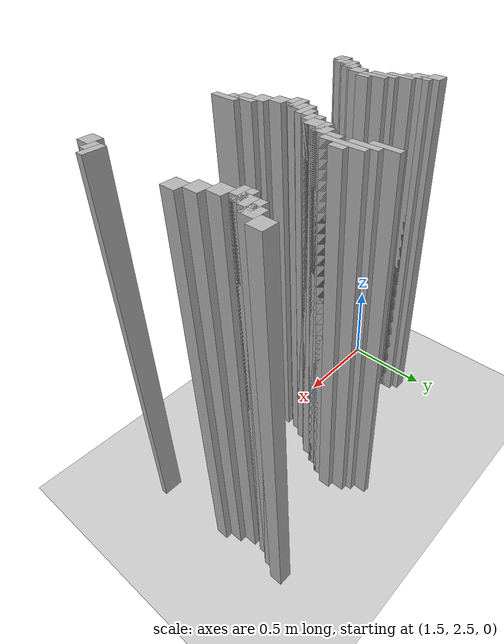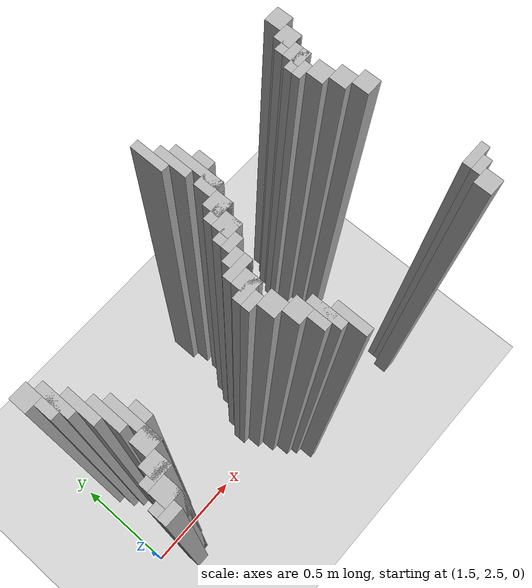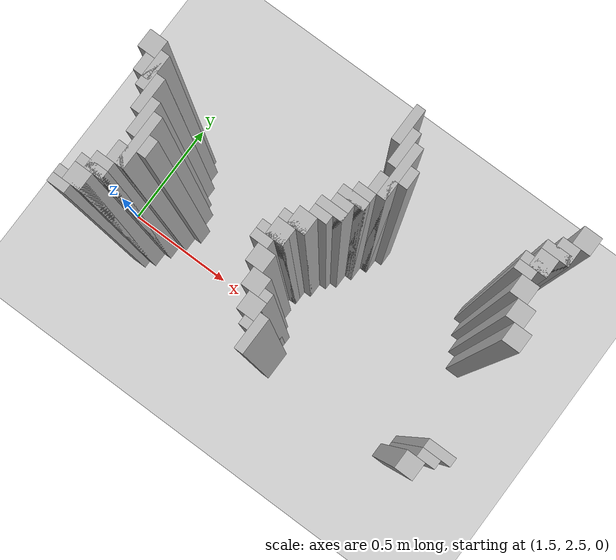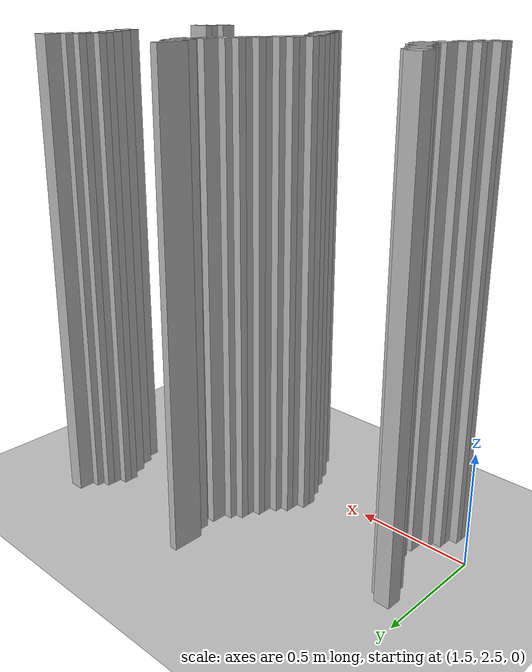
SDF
<sdf version="1.6">
 <world name="slam_world">
  <model name="ground_plane">
   <static>true</static>
   <link name="link">
    <collision name="collision">
     <geometry><plane><normal>0 0 1</normal><size>100 100</size></plane></geometry>
    </collision>
    <visual name="visual">
     <geometry><plane><normal>0 0 1</normal><size>100 100</size></plane></geometry>
     <material>
      <ambient>0.8 0.8 0.8 1</ambient>
      <diffuse>0.8 0.8 0.8 1</diffuse>
      <specular>0.8 0.8 0.8 1</specular>
     </material>
    </visual>
   </link>
  </model>
  <model name="wall_4666">
   <static>true</static>
   <pose>2.4187935034802783 3.167053364269141 1.0 0 0 0</pose>
   <link name="link">
    <collision name="collision">
     <geometry><box><size>0.03480278422273782 0.13921113689095127 2.0</size></box></geometry>
    </collision>
    <visual name="visual">
     <geometry><box><size>0.03480278422273782 0.13921113689095127 2.0</size></box></geometry>
     <material><ambient>0.5 0.5 0.5 1</ambient><diffuse>0.7 0.7 0.7 1</diffuse></material>
    </visual>
   </link>
  </model>
  <model name="wall_4667">
   <static>true</static>
   <pose>3.097447795823666 3.201856148491879 1.0 0 0 0</pose>
   <link name="link">
    <collision name="collision">
     <geometry><box><size>0.06960556844547564 0.06960556844547564 2.0</size></box></geometry>
    </collision>
    <visual name="visual">
     <geometry><box><size>0.06960556844547564 0.06960556844547564 2.0</size></box></geometry>
     <material><ambient>0.5 0.5 0.5 1</ambient><diffuse>0.7 0.7 0.7 1</diffuse></material>
    </visual>
   </link>
  </model>
  <model name="wall_4679">
   <static>true</static>
   <pose>2.453596287703016 3.097447795823666 1.0 0 0 0</pose>
   <link name="link">
    <collision name="collision">
     <geometry><box><size>0.03480278422273782 0.13921113689095127 2.0</size></box></geometry>
    </collision>
    <visual name="visual">
     <geometry><box><size>0.03480278422273782 0.13921113689095127 2.0</size></box></geometry>
     <material><ambient>0.5 0.5 0.5 1</ambient><diffuse>0.7 0.7 0.7 1</diffuse></material>
    </visual>
   </link>
  </model>
  <model name="wall_4680">
   <static>true</static>
   <pose>3.062645011600928 3.1322505800464038 1.0 0 0 0</pose>
   <link name="link">
    <collision name="collision">
     <geometry><box><size>0.06960556844547564 0.06960556844547564 2.0</size></box></geometry>
    </collision>
    <visual name="visual">
     <geometry><box><size>0.06960556844547564 0.06960556844547564 2.0</size></box></geometry>
     <material><ambient>0.5 0.5 0.5 1</ambient><diffuse>0.7 0.7 0.7 1</diffuse></material>
    </visual>
   </link>
  </model>
  <model name="wall_4692">
   <static>true</static>
   <pose>2.488399071925754 3.02784222737819 1.0 0 0 0</pose>
   <link name="link">
    <collision name="collision">
     <geometry><box><size>0.03480278422273782 0.2088167053364269 2.0</size></box></geometry>
    </collision>
    <visual name="visual">
     <geometry><box><size>0.03480278422273782 0.2088167053364269 2.0</size></box></geometry>
     <material><ambient>0.5 0.5 0.5 1</ambient><diffuse>0.7 0.7 0.7 1</diffuse></material>
    </visual>
   </link>
  </model>
  <model name="wall_4693">
   <static>true</static>
   <pose>3.045243619489559 3.1148491879350346 1.0 0 0 0</pose>
   <link name="link">
    <collision name="collision">
     <geometry><box><size>0.10440835266821345 0.03480278422273782 2.0</size></box></geometry>
    </collision>
    <visual name="visual">
     <geometry><box><size>0.10440835266821345 0.03480278422273782 2.0</size></box></geometry>
     <material><ambient>0.5 0.5 0.5 1</ambient><diffuse>0.7 0.7 0.7 1</diffuse></material>
    </visual>
   </link>
  </model>
  <model name="wall_4704">
   <static>true</static>
   <pose>3.02784222737819 3.062645011600928 1.0 0 0 0</pose>
   <link name="link">
    <collision name="collision">
     <geometry><box><size>0.06960556844547564 0.06960556844547564 2.0</size></box></geometry>
    </collision>
    <visual name="visual">
     <geometry><box><size>0.06960556844547564 0.06960556844547564 2.0</size></box></geometry>
     <material><ambient>0.5 0.5 0.5 1</ambient><diffuse>0.7 0.7 0.7 1</diffuse></material>
    </visual>
   </link>
  </model>
  <model name="wall_4712">
   <static>true</static>
   <pose>2.523201856148492 3.02784222737819 1.0 0 0 0</pose>
   <link name="link">
    <collision name="collision">
     <geometry><box><size>0.03480278422273782 0.06960556844547564 2.0</size></box></geometry>
    </collision>
    <visual name="visual">
     <geometry><box><size>0.03480278422273782 0.06960556844547564 2.0</size></box></geometry>
     <material><ambient>0.5 0.5 0.5 1</ambient><diffuse>0.7 0.7 0.7 1</diffuse></material>
    </visual>
   </link>
  </model>
  <model name="wall_4713">
   <static>true</static>
   <pose>3.010440835266821 3.045243619489559 1.0 0 0 0</pose>
   <link name="link">
    <collision name="collision">
     <geometry><box><size>0.10440835266821345 0.03480278422273782 2.0</size></box></geometry>
    </collision>
    <visual name="visual">
     <geometry><box><size>0.10440835266821345 0.03480278422273782 2.0</size></box></geometry>
     <material><ambient>0.5 0.5 0.5 1</ambient><diffuse>0.7 0.7 0.7 1</diffuse></material>
    </visual>
   </link>
  </model>
  <model name="wall_4726">
   <static>true</static>
   <pose>2.9930394431554523 3.010440835266821 1.0 0 0 0</pose>
   <link name="link">
    <collision name="collision">
     <geometry><box><size>0.06960556844547564 0.03480278422273782 2.0</size></box></geometry>
    </collision>
    <visual name="visual">
     <geometry><box><size>0.06960556844547564 0.03480278422273782 2.0</size></box></geometry>
     <material><ambient>0.5 0.5 0.5 1</ambient><diffuse>0.7 0.7 0.7 1</diffuse></material>
    </visual>
   </link>
  </model>
  <model name="wall_4734">
   <static>true</static>
   <pose>2.470997679814385 2.9582366589327145 1.0 0 0 0</pose>
   <link name="link">
    <collision name="collision">
     <geometry><box><size>0.06960556844547564 0.06960556844547564 2.0</size></box></geometry>
    </collision>
    <visual name="visual">
     <geometry><box><size>0.06960556844547564 0.06960556844547564 2.0</size></box></geometry>
     <material><ambient>0.5 0.5 0.5 1</ambient><diffuse>0.7 0.7 0.7 1</diffuse></material>
    </visual>
   </link>
  </model>
  <model name="wall_4735">
   <static>true</static>
   <pose>3.02784222737819 2.9582366589327145 1.0 0 0 0</pose>
   <link name="link">
    <collision name="collision">
     <geometry><box><size>0.06960556844547564 0.06960556844547564 2.0</size></box></geometry>
    </collision>
    <visual name="visual">
     <geometry><box><size>0.06960556844547564 0.06960556844547564 2.0</size></box></geometry>
     <material><ambient>0.5 0.5 0.5 1</ambient><diffuse>0.7 0.7 0.7 1</diffuse></material>
    </visual>
   </link>
  </model>
  <model name="wall_4752">
   <static>true</static>
   <pose>1.6009280742459395 2.8886310904872388 1.0 0 0 0</pose>
   <link name="link">
    <collision name="collision">
     <geometry><box><size>0.06960556844547564 0.06960556844547564 2.0</size></box></geometry>
    </collision>
    <visual name="visual">
     <geometry><box><size>0.06960556844547564 0.06960556844547564 2.0</size></box></geometry>
     <material><ambient>0.5 0.5 0.5 1</ambient><diffuse>0.7 0.7 0.7 1</diffuse></material>
    </visual>
   </link>
  </model>
  <model name="wall_4753">
   <static>true</static>
   <pose>2.436194895591647 2.8886310904872388 1.0 0 0 0</pose>
   <link name="link">
    <collision name="collision">
     <geometry><box><size>0.06960556844547564 0.06960556844547564 2.0</size></box></geometry>
    </collision>
    <visual name="visual">
     <geometry><box><size>0.06960556844547564 0.06960556844547564 2.0</size></box></geometry>
     <material><ambient>0.5 0.5 0.5 1</ambient><diffuse>0.7 0.7 0.7 1</diffuse></material>
    </visual>
   </link>
  </model>
  <model name="wall_4754">
   <static>true</static>
   <pose>3.062645011600928 2.8886310904872388 1.0 0 0 0</pose>
   <link name="link">
    <collision name="collision">
     <geometry><box><size>0.06960556844547564 0.06960556844547564 2.0</size></box></geometry>
    </collision>
    <visual name="visual">
     <geometry><box><size>0.06960556844547564 0.06960556844547564 2.0</size></box></geometry>
     <material><ambient>0.5 0.5 0.5 1</ambient><diffuse>0.7 0.7 0.7 1</diffuse></material>
    </visual>
   </link>
  </model>
  <model name="wall_4768">
   <static>true</static>
   <pose>1.6531322505800463 2.819025522041763 1.0 0 0 0</pose>
   <link name="link">
    <collision name="collision">
     <geometry><box><size>0.03480278422273782 0.13921113689095127 2.0</size></box></geometry>
    </collision>
    <visual name="visual">
     <geometry><box><size>0.03480278422273782 0.13921113689095127 2.0</size></box></geometry>
     <material><ambient>0.5 0.5 0.5 1</ambient><diffuse>0.7 0.7 0.7 1</diffuse></material>
    </visual>
   </link>
  </model>
  <model name="wall_4769">
   <static>true</static>
   <pose>2.4187935034802783 2.87122969837587 1.0 0 0 0</pose>
   <link name="link">
    <collision name="collision">
     <geometry><box><size>0.10440835266821345 0.03480278422273782 2.0</size></box></geometry>
    </collision>
    <visual name="visual">
     <geometry><box><size>0.10440835266821345 0.03480278422273782 2.0</size></box></geometry>
     <material><ambient>0.5 0.5 0.5 1</ambient><diffuse>0.7 0.7 0.7 1</diffuse></material>
    </visual>
   </link>
  </model>
  <model name="wall_4784">
   <static>true</static>
   <pose>1.6357308584686774 2.819025522041763 1.0 0 0 0</pose>
   <link name="link">
    <collision name="collision">
     <geometry><box><size>0.06960556844547564 0.06960556844547564 2.0</size></box></geometry>
    </collision>
    <visual name="visual">
     <geometry><box><size>0.06960556844547564 0.06960556844547564 2.0</size></box></geometry>
     <material><ambient>0.5 0.5 0.5 1</ambient><diffuse>0.7 0.7 0.7 1</diffuse></material>
    </visual>
   </link>
  </model>
  <model name="wall_4785">
   <static>true</static>
   <pose>2.4013921113689096 2.819025522041763 1.0 0 0 0</pose>
   <link name="link">
    <collision name="collision">
     <geometry><box><size>0.06960556844547564 0.06960556844547564 2.0</size></box></geometry>
    </collision>
    <visual name="visual">
     <geometry><box><size>0.06960556844547564 0.06960556844547564 2.0</size></box></geometry>
     <material><ambient>0.5 0.5 0.5 1</ambient><diffuse>0.7 0.7 0.7 1</diffuse></material>
    </visual>
   </link>
  </model>
  <model name="wall_4786">
   <static>true</static>
   <pose>3.097447795823666 2.819025522041763 1.0 0 0 0</pose>
   <link name="link">
    <collision name="collision">
     <geometry><box><size>0.06960556844547564 0.06960556844547564 2.0</size></box></geometry>
    </collision>
    <visual name="visual">
     <geometry><box><size>0.06960556844547564 0.06960556844547564 2.0</size></box></geometry>
     <material><ambient>0.5 0.5 0.5 1</ambient><diffuse>0.7 0.7 0.7 1</diffuse></material>
    </visual>
   </link>
  </model>
  <model name="wall_4800">
   <static>true</static>
   <pose>1.6879350348027842 2.7494199535962878 1.0 0 0 0</pose>
   <link name="link">
    <collision name="collision">
     <geometry><box><size>0.03480278422273782 0.13921113689095127 2.0</size></box></geometry>
    </collision>
    <visual name="visual">
     <geometry><box><size>0.03480278422273782 0.13921113689095127 2.0</size></box></geometry>
     <material><ambient>0.5 0.5 0.5 1</ambient><diffuse>0.7 0.7 0.7 1</diffuse></material>
    </visual>
   </link>
  </model>
  <model name="wall_4801">
   <static>true</static>
   <pose>2.3839907192575405 2.8016241299303943 1.0 0 0 0</pose>
   <link name="link">
    <collision name="collision">
     <geometry><box><size>0.10440835266821345 0.03480278422273782 2.0</size></box></geometry>
    </collision>
    <visual name="visual">
     <geometry><box><size>0.10440835266821345 0.03480278422273782 2.0</size></box></geometry>
     <material><ambient>0.5 0.5 0.5 1</ambient><diffuse>0.7 0.7 0.7 1</diffuse></material>
    </visual>
   </link>
  </model>
  <model name="wall_4815">
   <static>true</static>
   <pose>2.3665893271461718 2.7668213457076565 1.0 0 0 0</pose>
   <link name="link">
    <collision name="collision">
     <geometry><box><size>0.06960556844547564 0.03480278422273782 2.0</size></box></geometry>
    </collision>
    <visual name="visual">
     <geometry><box><size>0.06960556844547564 0.03480278422273782 2.0</size></box></geometry>
     <material><ambient>0.5 0.5 0.5 1</ambient><diffuse>0.7 0.7 0.7 1</diffuse></material>
    </visual>
   </link>
  </model>
  <model name="wall_4824">
   <static>true</static>
   <pose>1.722737819025522 2.679814385150812 1.0 0 0 0</pose>
   <link name="link">
    <collision name="collision">
     <geometry><box><size>0.03480278422273782 0.13921113689095127 2.0</size></box></geometry>
    </collision>
    <visual name="visual">
     <geometry><box><size>0.03480278422273782 0.13921113689095127 2.0</size></box></geometry>
     <material><ambient>0.5 0.5 0.5 1</ambient><diffuse>0.7 0.7 0.7 1</diffuse></material>
    </visual>
   </link>
  </model>
  <model name="wall_4825">
   <static>true</static>
   <pose>2.331786542923434 2.71461716937355 1.0 0 0 0</pose>
   <link name="link">
    <collision name="collision">
     <geometry><box><size>0.06960556844547564 0.06960556844547564 2.0</size></box></geometry>
    </collision>
    <visual name="visual">
     <geometry><box><size>0.06960556844547564 0.06960556844547564 2.0</size></box></geometry>
     <material><ambient>0.5 0.5 0.5 1</ambient><diffuse>0.7 0.7 0.7 1</diffuse></material>
    </visual>
   </link>
  </model>
  <model name="wall_4840">
   <static>true</static>
   <pose>1.75754060324826 2.6102088167053363 1.0 0 0 0</pose>
   <link name="link">
    <collision name="collision">
     <geometry><box><size>0.03480278422273782 0.2088167053364269 2.0</size></box></geometry>
    </collision>
    <visual name="visual">
     <geometry><box><size>0.03480278422273782 0.2088167053364269 2.0</size></box></geometry>
     <material><ambient>0.5 0.5 0.5 1</ambient><diffuse>0.7 0.7 0.7 1</diffuse></material>
    </visual>
   </link>
  </model>
  <model name="wall_4841">
   <static>true</static>
   <pose>2.3143851508120648 2.6972157772621808 1.0 0 0 0</pose>
   <link name="link">
    <collision name="collision">
     <geometry><box><size>0.10440835266821345 0.03480278422273782 2.0</size></box></geometry>
    </collision>
    <visual name="visual">
     <geometry><box><size>0.10440835266821345 0.03480278422273782 2.0</size></box></geometry>
     <material><ambient>0.5 0.5 0.5 1</ambient><diffuse>0.7 0.7 0.7 1</diffuse></material>
    </visual>
   </link>
  </model>
  <model name="wall_4855">
   <static>true</static>
   <pose>2.296983758700696 2.645011600928074 1.0 0 0 0</pose>
   <link name="link">
    <collision name="collision">
     <geometry><box><size>0.06960556844547564 0.06960556844547564 2.0</size></box></geometry>
    </collision>
    <visual name="visual">
     <geometry><box><size>0.06960556844547564 0.06960556844547564 2.0</size></box></geometry>
     <material><ambient>0.5 0.5 0.5 1</ambient><diffuse>0.7 0.7 0.7 1</diffuse></material>
    </visual>
   </link>
  </model>
  <model name="wall_4864">
   <static>true</static>
   <pose>1.7923433874709975 2.6102088167053363 1.0 0 0 0</pose>
   <link name="link">
    <collision name="collision">
     <geometry><box><size>0.03480278422273782 0.06960556844547564 2.0</size></box></geometry>
    </collision>
    <visual name="visual">
     <geometry><box><size>0.03480278422273782 0.06960556844547564 2.0</size></box></geometry>
     <material><ambient>0.5 0.5 0.5 1</ambient><diffuse>0.7 0.7 0.7 1</diffuse></material>
    </visual>
   </link>
  </model>
  <model name="wall_4865">
   <static>true</static>
   <pose>2.279582366589327 2.627610208816705 1.0 0 0 0</pose>
   <link name="link">
    <collision name="collision">
     <geometry><box><size>0.10440835266821345 0.03480278422273782 2.0</size></box></geometry>
    </collision>
    <visual name="visual">
     <geometry><box><size>0.10440835266821345 0.03480278422273782 2.0</size></box></geometry>
     <material><ambient>0.5 0.5 0.5 1</ambient><diffuse>0.7 0.7 0.7 1</diffuse></material>
    </visual>
   </link>
  </model>
  <model name="wall_4878">
   <static>true</static>
   <pose>2.262180974477958 2.5928074245939676 1.0 0 0 0</pose>
   <link name="link">
    <collision name="collision">
     <geometry><box><size>0.06960556844547564 0.03480278422273782 2.0</size></box></geometry>
    </collision>
    <visual name="visual">
     <geometry><box><size>0.06960556844547564 0.03480278422273782 2.0</size></box></geometry>
     <material><ambient>0.5 0.5 0.5 1</ambient><diffuse>0.7 0.7 0.7 1</diffuse></material>
    </visual>
   </link>
  </model>
  <model name="wall_4888">
   <static>true</static>
   <pose>1.740139211136891 2.5406032482598606 1.0 0 0 0</pose>
   <link name="link">
    <collision name="collision">
     <geometry><box><size>0.06960556844547564 0.06960556844547564 2.0</size></box></geometry>
    </collision>
    <visual name="visual">
     <geometry><box><size>0.06960556844547564 0.06960556844547564 2.0</size></box></geometry>
     <material><ambient>0.5 0.5 0.5 1</ambient><diffuse>0.7 0.7 0.7 1</diffuse></material>
    </visual>
   </link>
  </model>
  <model name="wall_4889">
   <static>true</static>
   <pose>2.296983758700696 2.5406032482598606 1.0 0 0 0</pose>
   <link name="link">
    <collision name="collision">
     <geometry><box><size>0.06960556844547564 0.06960556844547564 2.0</size></box></geometry>
    </collision>
    <visual name="visual">
     <geometry><box><size>0.06960556844547564 0.06960556844547564 2.0</size></box></geometry>
     <material><ambient>0.5 0.5 0.5 1</ambient><diffuse>0.7 0.7 0.7 1</diffuse></material>
    </visual>
   </link>
  </model>
  <model name="wall_4908">
   <static>true</static>
   <pose>1.705336426914153 2.470997679814385 1.0 0 0 0</pose>
   <link name="link">
    <collision name="collision">
     <geometry><box><size>0.06960556844547564 0.06960556844547564 2.0</size></box></geometry>
    </collision>
    <visual name="visual">
     <geometry><box><size>0.06960556844547564 0.06960556844547564 2.0</size></box></geometry>
     <material><ambient>0.5 0.5 0.5 1</ambient><diffuse>0.7 0.7 0.7 1</diffuse></material>
    </visual>
   </link>
  </model>
  <model name="wall_4909">
   <static>true</static>
   <pose>2.331786542923434 2.470997679814385 1.0 0 0 0</pose>
   <link name="link">
    <collision name="collision">
     <geometry><box><size>0.06960556844547564 0.06960556844547564 2.0</size></box></geometry>
    </collision>
    <visual name="visual">
     <geometry><box><size>0.06960556844547564 0.06960556844547564 2.0</size></box></geometry>
     <material><ambient>0.5 0.5 0.5 1</ambient><diffuse>0.7 0.7 0.7 1</diffuse></material>
    </visual>
   </link>
  </model>
  <model name="wall_4921">
   <static>true</static>
   <pose>1.6879350348027842 2.453596287703016 1.0 0 0 0</pose>
   <link name="link">
    <collision name="collision">
     <geometry><box><size>0.10440835266821345 0.03480278422273782 2.0</size></box></geometry>
    </collision>
    <visual name="visual">
     <geometry><box><size>0.10440835266821345 0.03480278422273782 2.0</size></box></geometry>
     <material><ambient>0.5 0.5 0.5 1</ambient><diffuse>0.7 0.7 0.7 1</diffuse></material>
    </visual>
   </link>
  </model>
  <model name="wall_4922">
   <static>true</static>
   <pose>2.3839907192575405 2.4013921113689096 1.0 0 0 0</pose>
   <link name="link">
    <collision name="collision">
     <geometry><box><size>0.03480278422273782 0.13921113689095127 2.0</size></box></geometry>
    </collision>
    <visual name="visual">
     <geometry><box><size>0.03480278422273782 0.13921113689095127 2.0</size></box></geometry>
     <material><ambient>0.5 0.5 0.5 1</ambient><diffuse>0.7 0.7 0.7 1</diffuse></material>
    </visual>
   </link>
  </model>
  <model name="wall_4934">
   <static>true</static>
   <pose>1.6705336426914152 2.4013921113689096 1.0 0 0 0</pose>
   <link name="link">
    <collision name="collision">
     <geometry><box><size>0.06960556844547564 0.06960556844547564 2.0</size></box></geometry>
    </collision>
    <visual name="visual">
     <geometry><box><size>0.06960556844547564 0.06960556844547564 2.0</size></box></geometry>
     <material><ambient>0.5 0.5 0.5 1</ambient><diffuse>0.7 0.7 0.7 1</diffuse></material>
    </visual>
   </link>
  </model>
  <model name="wall_4935">
   <static>true</static>
   <pose>2.3665893271461718 2.4013921113689096 1.0 0 0 0</pose>
   <link name="link">
    <collision name="collision">
     <geometry><box><size>0.06960556844547564 0.06960556844547564 2.0</size></box></geometry>
    </collision>
    <visual name="visual">
     <geometry><box><size>0.06960556844547564 0.06960556844547564 2.0</size></box></geometry>
     <material><ambient>0.5 0.5 0.5 1</ambient><diffuse>0.7 0.7 0.7 1</diffuse></material>
    </visual>
   </link>
  </model>
  <model name="wall_4946">
   <static>true</static>
   <pose>1.6531322505800463 2.3839907192575405 1.0 0 0 0</pose>
   <link name="link">
    <collision name="collision">
     <geometry><box><size>0.10440835266821345 0.03480278422273782 2.0</size></box></geometry>
    </collision>
    <visual name="visual">
     <geometry><box><size>0.10440835266821345 0.03480278422273782 2.0</size></box></geometry>
     <material><ambient>0.5 0.5 0.5 1</ambient><diffuse>0.7 0.7 0.7 1</diffuse></material>
    </visual>
   </link>
  </model>
  <model name="wall_4947">
   <static>true</static>
   <pose>2.4187935034802783 2.331786542923434 1.0 0 0 0</pose>
   <link name="link">
    <collision name="collision">
     <geometry><box><size>0.03480278422273782 0.13921113689095127 2.0</size></box></geometry>
    </collision>
    <visual name="visual">
     <geometry><box><size>0.03480278422273782 0.13921113689095127 2.0</size></box></geometry>
     <material><ambient>0.5 0.5 0.5 1</ambient><diffuse>0.7 0.7 0.7 1</diffuse></material>
    </visual>
   </link>
  </model>
  <model name="wall_4948">
   <static>true</static>
   <pose>3.1148491879350346 2.3839907192575405 1.0 0 0 0</pose>
   <link name="link">
    <collision name="collision">
     <geometry><box><size>0.10440835266821345 0.03480278422273782 2.0</size></box></geometry>
    </collision>
    <visual name="visual">
     <geometry><box><size>0.10440835266821345 0.03480278422273782 2.0</size></box></geometry>
     <material><ambient>0.5 0.5 0.5 1</ambient><diffuse>0.7 0.7 0.7 1</diffuse></material>
    </visual>
   </link>
  </model>
  <model name="wall_4959">
   <static>true</static>
   <pose>1.6357308584686774 2.3491879350348026 1.0 0 0 0</pose>
   <link name="link">
    <collision name="collision">
     <geometry><box><size>0.06960556844547564 0.03480278422273782 2.0</size></box></geometry>
    </collision>
    <visual name="visual">
     <geometry><box><size>0.06960556844547564 0.03480278422273782 2.0</size></box></geometry>
     <material><ambient>0.5 0.5 0.5 1</ambient><diffuse>0.7 0.7 0.7 1</diffuse></material>
    </visual>
   </link>
  </model>
  <model name="wall_4960">
   <static>true</static>
   <pose>3.097447795823666 2.3491879350348026 1.0 0 0 0</pose>
   <link name="link">
    <collision name="collision">
     <geometry><box><size>0.06960556844547564 0.03480278422273782 2.0</size></box></geometry>
    </collision>
    <visual name="visual">
     <geometry><box><size>0.06960556844547564 0.03480278422273782 2.0</size></box></geometry>
     <material><ambient>0.5 0.5 0.5 1</ambient><diffuse>0.7 0.7 0.7 1</diffuse></material>
    </visual>
   </link>
  </model>
  <model name="wall_4969">
   <static>true</static>
   <pose>3.062645011600928 2.296983758700696 1.0 0 0 0</pose>
   <link name="link">
    <collision name="collision">
     <geometry><box><size>0.06960556844547564 0.06960556844547564 2.0</size></box></geometry>
    </collision>
    <visual name="visual">
     <geometry><box><size>0.06960556844547564 0.06960556844547564 2.0</size></box></geometry>
     <material><ambient>0.5 0.5 0.5 1</ambient><diffuse>0.7 0.7 0.7 1</diffuse></material>
    </visual>
   </link>
  </model>
 </world>
</sdf>
